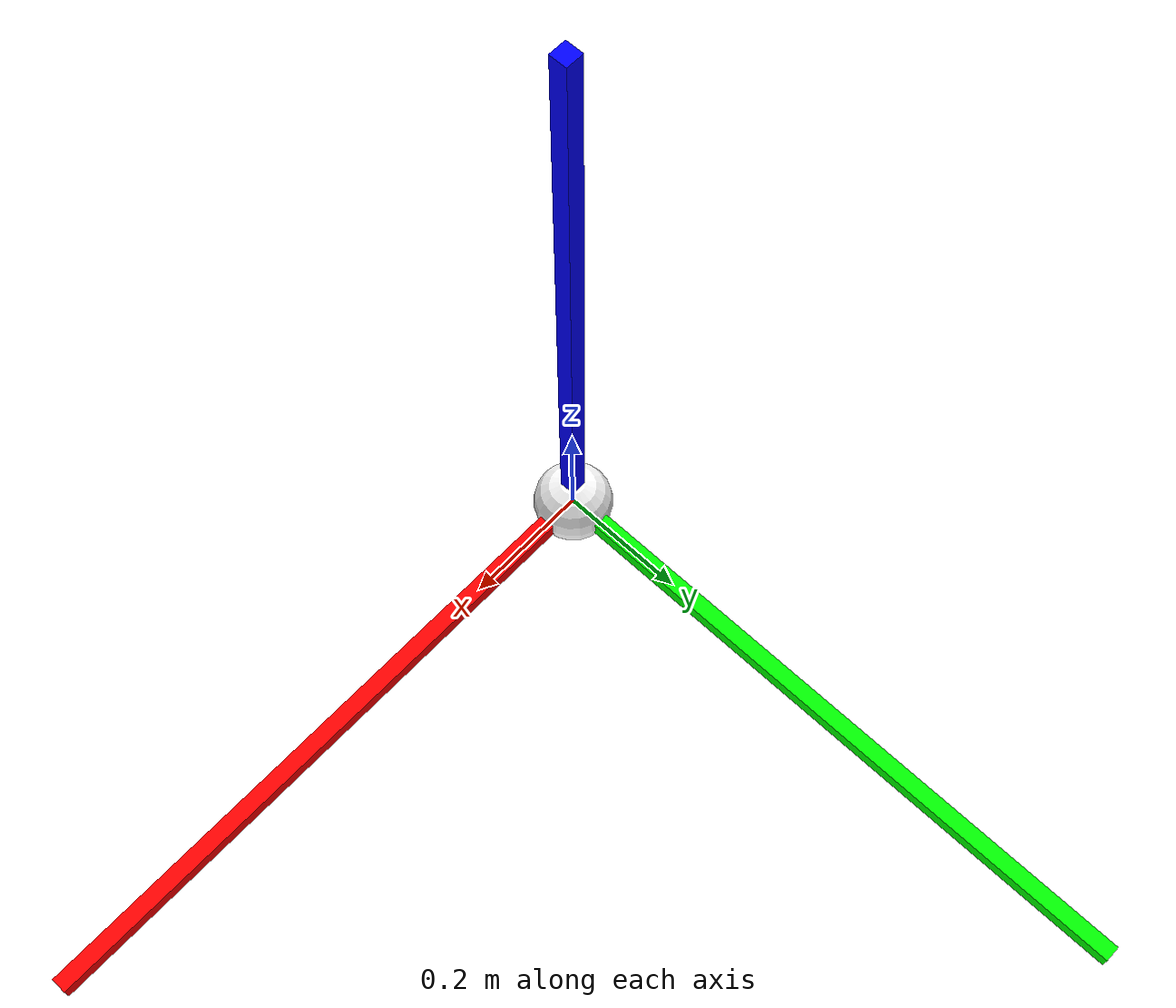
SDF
<?xml version="1.0"?>
<sdf version="1.10">
  <model name="icarus_debug_axes">
    <static>true</static>
    <link name="axes_link">
      <visual name="origin">
        <geometry>
          <sphere><radius>0.06</radius></sphere>
        </geometry>
        <material>
          <ambient>1 1 1 1</ambient>
          <diffuse>1 1 1 1</diffuse>
        </material>
      </visual>
      <visual name="x_east_red">
        <pose>0.5 0 0 0 0 0</pose>
        <geometry>
          <box><size>1 0.025 0.025</size></box>
        </geometry>
        <material>
          <ambient>1 0 0 1</ambient>
          <diffuse>1 0 0 1</diffuse>
        </material>
      </visual>
      <visual name="y_north_green">
        <pose>0 0.5 0 0 0 0</pose>
        <geometry>
          <box><size>0.025 1 0.025</size></box>
        </geometry>
        <material>
          <ambient>0 1 0 1</ambient>
          <diffuse>0 1 0 1</diffuse>
        </material>
      </visual>
      <visual name="z_up_blue">
        <pose>0 0 0.5 0 0 0</pose>
        <geometry>
          <box><size>0.025 0.025 1</size></box>
        </geometry>
        <material>
          <ambient>0 0 1 1</ambient>
          <diffuse>0 0 1 1</diffuse>
        </material>
      </visual>
    </link>
  </model>
</sdf>
